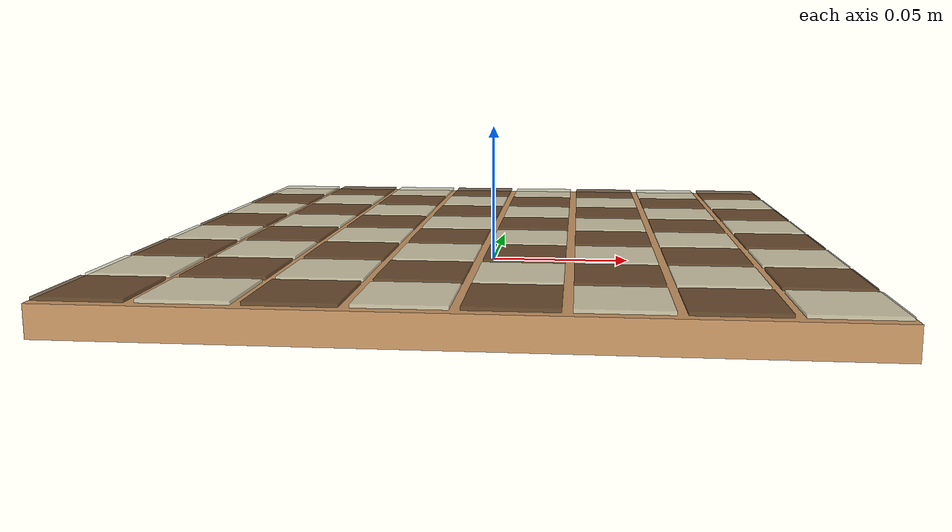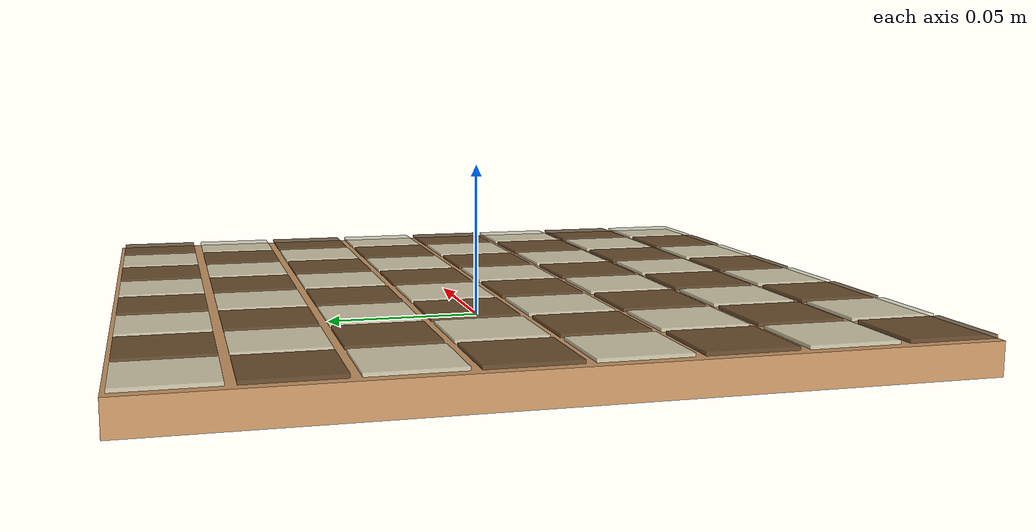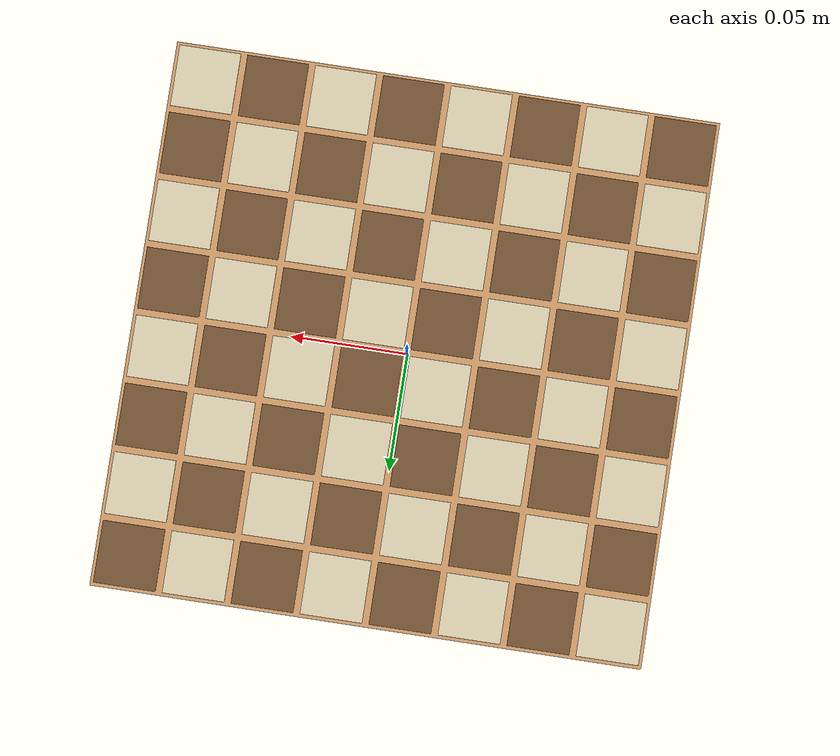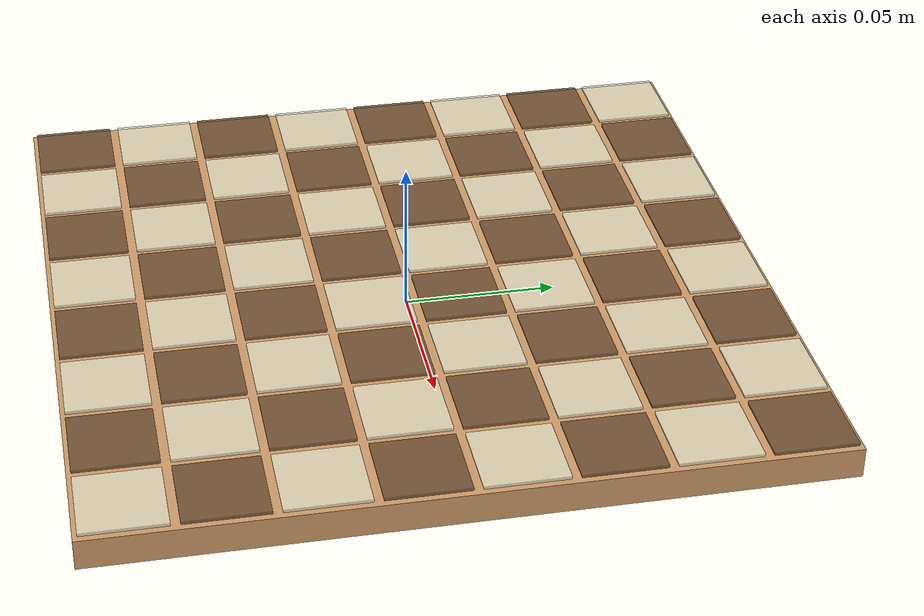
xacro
<?xml version="1.0"?>
<!-- chessmate_description/urdf/chess_board.urdf.xacro -->
<robot xmlns:xacro="http://www.ros.org/wiki/xacro" name="chess_board">

  <!-- Chess Board Parameters (from F360 design) -->
  <xacro:property name="board_size" value="0.23333" />        <!-- 233.33mm -->
  <xacro:property name="square_size" value="0.029166" />      <!-- 29.166mm (233.33/8) -->
  <xacro:property name="board_thickness" value="0.010" />     <!-- 10mm assumed -->
  <xacro:property name="distance_from_base" value="0.137" />  <!-- 137mm from robot base -->

  <!-- Mesh configuration -->
  <xacro:property name="use_board_meshes" value="false" />
  <xacro:property name="board_mesh_path" value="package://chessmate_description/meshes/board" />

  <!-- Chess Board Base Link -->
  <link name="chess_board">
    <visual>
      <xacro:if value="${use_board_meshes}">
        <origin xyz="0 0 0" rpy="0 0 0"/>
        <geometry>
          <mesh filename="${board_mesh_path}/chess_board_visual.stl" scale="0.001 0.001 0.001"/>
        </geometry>
      </xacro:if>
      <xacro:unless value="${use_board_meshes}">
        <origin xyz="0 0 ${board_thickness/2}" rpy="0 0 0"/>
        <geometry>
          <box size="${board_size} ${board_size} ${board_thickness}"/>
        </geometry>
      </xacro:unless>
      <material name="board_color">
        <color rgba="0.8 0.6 0.4 1.0"/>  <!-- Wood color -->
      </material>
    </visual>

    <collision>
      <xacro:if value="${use_board_meshes}">
        <origin xyz="0 0 0" rpy="0 0 0"/>
        <geometry>
          <mesh filename="${board_mesh_path}/chess_board_collision.stl" scale="0.001 0.001 0.001"/>
        </geometry>
      </xacro:if>
      <xacro:unless value="${use_board_meshes}">
        <origin xyz="0 0 ${board_thickness/2}" rpy="0 0 0"/>
        <geometry>
          <box size="${board_size} ${board_size} ${board_thickness}"/>
        </geometry>
      </xacro:unless>
    </collision>

    <inertial>
      <origin xyz="0 0 ${board_thickness/2}" rpy="0 0 0"/>
      <mass value="0.5"/>  <!-- 500g chess board -->
      <inertia ixx="0.002" ixy="0" ixz="0" iyy="0.002" iyz="0" izz="0.004"/>
    </inertial>
  </link>

  <!-- Chess Square Markers (for visualization and coordinate reference) -->
  <xacro:macro name="chess_square" params="file rank x_pos y_pos color">
    <link name="square_${file}${rank}">
      <visual>
        <origin xyz="0 0 ${board_thickness + 0.001}" rpy="0 0 0"/>
        <geometry>
          <box size="${square_size * 0.9} ${square_size * 0.9} 0.001"/>
        </geometry>
        <material name="square_${color}">
          <xacro:if value="${color == 'light'}">
            <color rgba="0.9 0.9 0.8 0.8"/>  <!-- Light squares -->
          </xacro:if>
          <xacro:if value="${color == 'dark'}">
            <color rgba="0.4 0.3 0.2 0.8"/>  <!-- Dark squares -->
          </xacro:if>
        </material>
      </visual>
    </link>

    <joint name="board_to_${file}${rank}" type="fixed">
      <parent link="chess_board"/>
      <child link="square_${file}${rank}"/>
      <origin xyz="${x_pos} ${y_pos} 0" rpy="0 0 0"/>
    </joint>
  </xacro:macro>

  <!-- Generate all 64 chess squares -->
  <!-- Files A-H, Ranks 1-8 -->
  <xacro:property name="files" value="['a','b','c','d','e','f','g','h']" />
  <xacro:property name="ranks" value="[1,2,3,4,5,6,7,8]" />

  <!-- A1 (bottom-left) to H8 (top-right) -->
  <!-- Board coordinate system: A1 at (-board_size/2 + square_size/2, -board_size/2 + square_size/2) -->

  <!-- Row 1 (rank 1) -->
  <xacro:chess_square file="a" rank="1" x_pos="${-board_size/2 + square_size/2}" y_pos="${-board_size/2 + square_size/2}" color="dark"/>
  <xacro:chess_square file="b" rank="1" x_pos="${-board_size/2 + 1.5*square_size}" y_pos="${-board_size/2 + square_size/2}" color="light"/>
  <xacro:chess_square file="c" rank="1" x_pos="${-board_size/2 + 2.5*square_size}" y_pos="${-board_size/2 + square_size/2}" color="dark"/>
  <xacro:chess_square file="d" rank="1" x_pos="${-board_size/2 + 3.5*square_size}" y_pos="${-board_size/2 + square_size/2}" color="light"/>
  <xacro:chess_square file="e" rank="1" x_pos="${-board_size/2 + 4.5*square_size}" y_pos="${-board_size/2 + square_size/2}" color="dark"/>
  <xacro:chess_square file="f" rank="1" x_pos="${-board_size/2 + 5.5*square_size}" y_pos="${-board_size/2 + square_size/2}" color="light"/>
  <xacro:chess_square file="g" rank="1" x_pos="${-board_size/2 + 6.5*square_size}" y_pos="${-board_size/2 + square_size/2}" color="dark"/>
  <xacro:chess_square file="h" rank="1" x_pos="${-board_size/2 + 7.5*square_size}" y_pos="${-board_size/2 + square_size/2}" color="light"/>

  <!-- Row 2 (rank 2) -->
  <xacro:chess_square file="a" rank="2" x_pos="${-board_size/2 + square_size/2}" y_pos="${-board_size/2 + 1.5*square_size}" color="light"/>
  <xacro:chess_square file="b" rank="2" x_pos="${-board_size/2 + 1.5*square_size}" y_pos="${-board_size/2 + 1.5*square_size}" color="dark"/>
  <xacro:chess_square file="c" rank="2" x_pos="${-board_size/2 + 2.5*square_size}" y_pos="${-board_size/2 + 1.5*square_size}" color="light"/>
  <xacro:chess_square file="d" rank="2" x_pos="${-board_size/2 + 3.5*square_size}" y_pos="${-board_size/2 + 1.5*square_size}" color="dark"/>
  <xacro:chess_square file="e" rank="2" x_pos="${-board_size/2 + 4.5*square_size}" y_pos="${-board_size/2 + 1.5*square_size}" color="light"/>
  <xacro:chess_square file="f" rank="2" x_pos="${-board_size/2 + 5.5*square_size}" y_pos="${-board_size/2 + 1.5*square_size}" color="dark"/>
  <xacro:chess_square file="g" rank="2" x_pos="${-board_size/2 + 6.5*square_size}" y_pos="${-board_size/2 + 1.5*square_size}" color="light"/>
  <xacro:chess_square file="h" rank="2" x_pos="${-board_size/2 + 7.5*square_size}" y_pos="${-board_size/2 + 1.5*square_size}" color="dark"/>

  <!-- Row 3 (rank 3) -->
  <xacro:chess_square file="a" rank="3" x_pos="${-board_size/2 + square_size/2}" y_pos="${-board_size/2 + 2.5*square_size}" color="dark"/>
  <xacro:chess_square file="b" rank="3" x_pos="${-board_size/2 + 1.5*square_size}" y_pos="${-board_size/2 + 2.5*square_size}" color="light"/>
  <xacro:chess_square file="c" rank="3" x_pos="${-board_size/2 + 2.5*square_size}" y_pos="${-board_size/2 + 2.5*square_size}" color="dark"/>
  <xacro:chess_square file="d" rank="3" x_pos="${-board_size/2 + 3.5*square_size}" y_pos="${-board_size/2 + 2.5*square_size}" color="light"/>
  <xacro:chess_square file="e" rank="3" x_pos="${-board_size/2 + 4.5*square_size}" y_pos="${-board_size/2 + 2.5*square_size}" color="dark"/>
  <xacro:chess_square file="f" rank="3" x_pos="${-board_size/2 + 5.5*square_size}" y_pos="${-board_size/2 + 2.5*square_size}" color="light"/>
  <xacro:chess_square file="g" rank="3" x_pos="${-board_size/2 + 6.5*square_size}" y_pos="${-board_size/2 + 2.5*square_size}" color="dark"/>
  <xacro:chess_square file="h" rank="3" x_pos="${-board_size/2 + 7.5*square_size}" y_pos="${-board_size/2 + 2.5*square_size}" color="light"/>

  <!-- Row 4 (rank 4) -->
  <xacro:chess_square file="a" rank="4" x_pos="${-board_size/2 + square_size/2}" y_pos="${-board_size/2 + 3.5*square_size}" color="light"/>
  <xacro:chess_square file="b" rank="4" x_pos="${-board_size/2 + 1.5*square_size}" y_pos="${-board_size/2 + 3.5*square_size}" color="dark"/>
  <xacro:chess_square file="c" rank="4" x_pos="${-board_size/2 + 2.5*square_size}" y_pos="${-board_size/2 + 3.5*square_size}" color="light"/>
  <xacro:chess_square file="d" rank="4" x_pos="${-board_size/2 + 3.5*square_size}" y_pos="${-board_size/2 + 3.5*square_size}" color="dark"/>
  <xacro:chess_square file="e" rank="4" x_pos="${-board_size/2 + 4.5*square_size}" y_pos="${-board_size/2 + 3.5*square_size}" color="light"/>
  <xacro:chess_square file="f" rank="4" x_pos="${-board_size/2 + 5.5*square_size}" y_pos="${-board_size/2 + 3.5*square_size}" color="dark"/>
  <xacro:chess_square file="g" rank="4" x_pos="${-board_size/2 + 6.5*square_size}" y_pos="${-board_size/2 + 3.5*square_size}" color="light"/>
  <xacro:chess_square file="h" rank="4" x_pos="${-board_size/2 + 7.5*square_size}" y_pos="${-board_size/2 + 3.5*square_size}" color="dark"/>

  <!-- Row 5 (rank 5) -->
  <xacro:chess_square file="a" rank="5" x_pos="${-board_size/2 + square_size/2}" y_pos="${-board_size/2 + 4.5*square_size}" color="dark"/>
  <xacro:chess_square file="b" rank="5" x_pos="${-board_size/2 + 1.5*square_size}" y_pos="${-board_size/2 + 4.5*square_size}" color="light"/>
  <xacro:chess_square file="c" rank="5" x_pos="${-board_size/2 + 2.5*square_size}" y_pos="${-board_size/2 + 4.5*square_size}" color="dark"/>
  <xacro:chess_square file="d" rank="5" x_pos="${-board_size/2 + 3.5*square_size}" y_pos="${-board_size/2 + 4.5*square_size}" color="light"/>
  <xacro:chess_square file="e" rank="5" x_pos="${-board_size/2 + 4.5*square_size}" y_pos="${-board_size/2 + 4.5*square_size}" color="dark"/>
  <xacro:chess_square file="f" rank="5" x_pos="${-board_size/2 + 5.5*square_size}" y_pos="${-board_size/2 + 4.5*square_size}" color="light"/>
  <xacro:chess_square file="g" rank="5" x_pos="${-board_size/2 + 6.5*square_size}" y_pos="${-board_size/2 + 4.5*square_size}" color="dark"/>
  <xacro:chess_square file="h" rank="5" x_pos="${-board_size/2 + 7.5*square_size}" y_pos="${-board_size/2 + 4.5*square_size}" color="light"/>

  <!-- Row 6 (rank 6) -->
  <xacro:chess_square file="a" rank="6" x_pos="${-board_size/2 + square_size/2}" y_pos="${-board_size/2 + 5.5*square_size}" color="light"/>
  <xacro:chess_square file="b" rank="6" x_pos="${-board_size/2 + 1.5*square_size}" y_pos="${-board_size/2 + 5.5*square_size}" color="dark"/>
  <xacro:chess_square file="c" rank="6" x_pos="${-board_size/2 + 2.5*square_size}" y_pos="${-board_size/2 + 5.5*square_size}" color="light"/>
  <xacro:chess_square file="d" rank="6" x_pos="${-board_size/2 + 3.5*square_size}" y_pos="${-board_size/2 + 5.5*square_size}" color="dark"/>
  <xacro:chess_square file="e" rank="6" x_pos="${-board_size/2 + 4.5*square_size}" y_pos="${-board_size/2 + 5.5*square_size}" color="light"/>
  <xacro:chess_square file="f" rank="6" x_pos="${-board_size/2 + 5.5*square_size}" y_pos="${-board_size/2 + 5.5*square_size}" color="dark"/>
  <xacro:chess_square file="g" rank="6" x_pos="${-board_size/2 + 6.5*square_size}" y_pos="${-board_size/2 + 5.5*square_size}" color="light"/>
  <xacro:chess_square file="h" rank="6" x_pos="${-board_size/2 + 7.5*square_size}" y_pos="${-board_size/2 + 5.5*square_size}" color="dark"/>

  <!-- Row 7 (rank 7) -->
  <xacro:chess_square file="a" rank="7" x_pos="${-board_size/2 + square_size/2}" y_pos="${-board_size/2 + 6.5*square_size}" color="dark"/>
  <xacro:chess_square file="b" rank="7" x_pos="${-board_size/2 + 1.5*square_size}" y_pos="${-board_size/2 + 6.5*square_size}" color="light"/>
  <xacro:chess_square file="c" rank="7" x_pos="${-board_size/2 + 2.5*square_size}" y_pos="${-board_size/2 + 6.5*square_size}" color="dark"/>
  <xacro:chess_square file="d" rank="7" x_pos="${-board_size/2 + 3.5*square_size}" y_pos="${-board_size/2 + 6.5*square_size}" color="light"/>
  <xacro:chess_square file="e" rank="7" x_pos="${-board_size/2 + 4.5*square_size}" y_pos="${-board_size/2 + 6.5*square_size}" color="dark"/>
  <xacro:chess_square file="f" rank="7" x_pos="${-board_size/2 + 5.5*square_size}" y_pos="${-board_size/2 + 6.5*square_size}" color="light"/>
  <xacro:chess_square file="g" rank="7" x_pos="${-board_size/2 + 6.5*square_size}" y_pos="${-board_size/2 + 6.5*square_size}" color="dark"/>
  <xacro:chess_square file="h" rank="7" x_pos="${-board_size/2 + 7.5*square_size}" y_pos="${-board_size/2 + 6.5*square_size}" color="light"/>

  <!-- Row 8 (rank 8) -->
  <xacro:chess_square file="a" rank="8" x_pos="${-board_size/2 + square_size/2}" y_pos="${-board_size/2 + 7.5*square_size}" color="light"/>
  <xacro:chess_square file="b" rank="8" x_pos="${-board_size/2 + 1.5*square_size}" y_pos="${-board_size/2 + 7.5*square_size}" color="dark"/>
  <xacro:chess_square file="c" rank="8" x_pos="${-board_size/2 + 2.5*square_size}" y_pos="${-board_size/2 + 7.5*square_size}" color="light"/>
  <xacro:chess_square file="d" rank="8" x_pos="${-board_size/2 + 3.5*square_size}" y_pos="${-board_size/2 + 7.5*square_size}" color="dark"/>
  <xacro:chess_square file="e" rank="8" x_pos="${-board_size/2 + 4.5*square_size}" y_pos="${-board_size/2 + 7.5*square_size}" color="light"/>
  <xacro:chess_square file="f" rank="8" x_pos="${-board_size/2 + 5.5*square_size}" y_pos="${-board_size/2 + 7.5*square_size}" color="dark"/>
  <xacro:chess_square file="g" rank="8" x_pos="${-board_size/2 + 6.5*square_size}" y_pos="${-board_size/2 + 7.5*square_size}" color="light"/>
  <xacro:chess_square file="h" rank="8" x_pos="${-board_size/2 + 7.5*square_size}" y_pos="${-board_size/2 + 7.5*square_size}" color="dark"/>

</robot>
